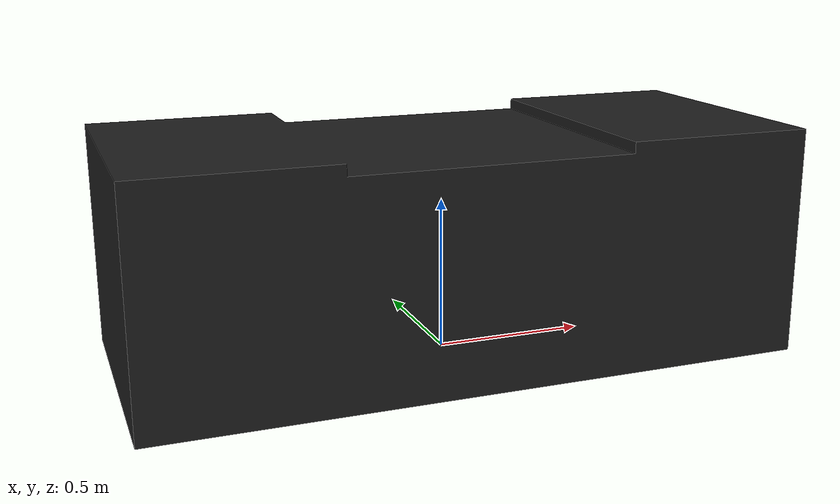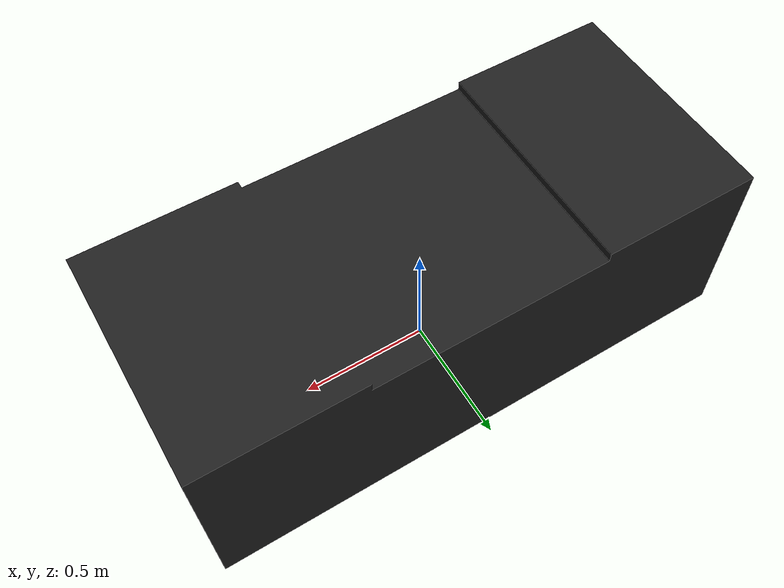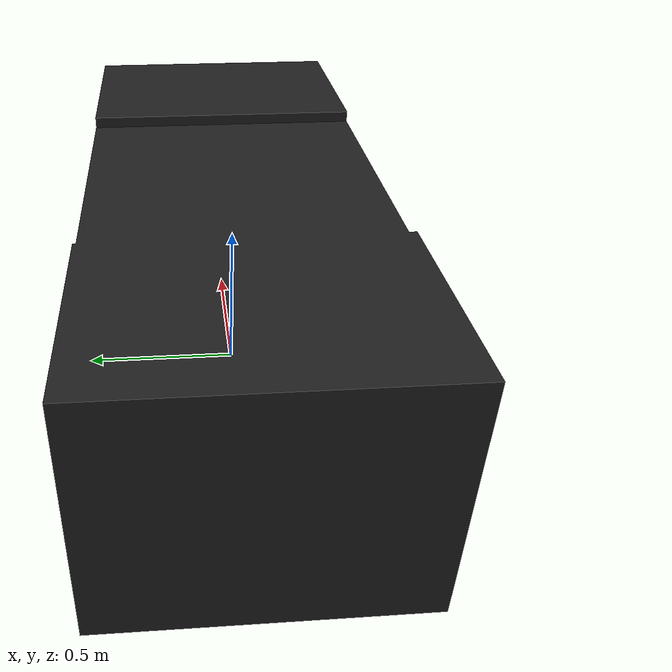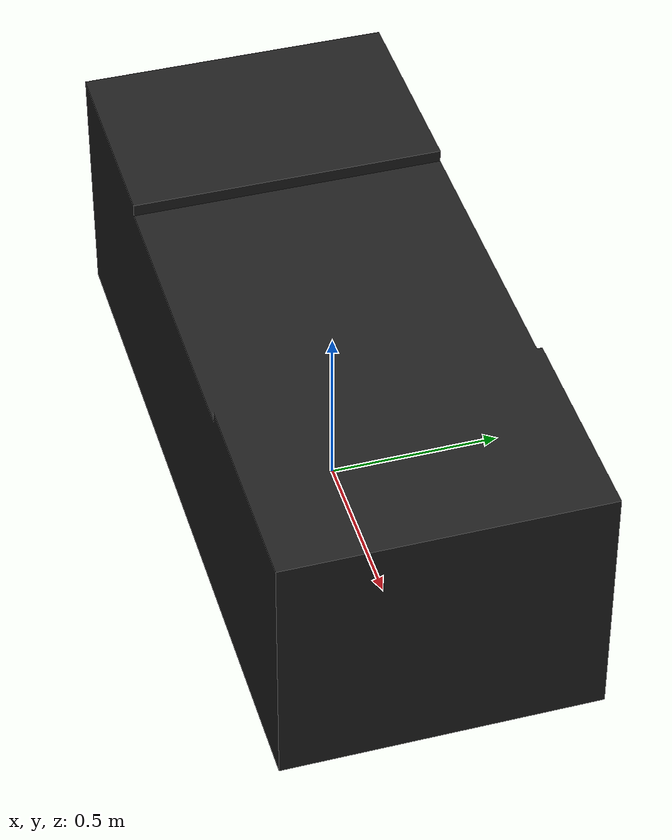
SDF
<?xml version="1.0" ?>
<sdf version="1.5">
  <model name="workstation">
    <static>true</static>
    <link name="link">
      <collision name="collision">
        <geometry>
          <mesh>
            <uri>model://workstation/meshes/workstation.obj</uri>
            <scale>1 1 1</scale>
          </mesh>
        </geometry>
        <surface>
          <friction>
            <ode>
              <mu>100</mu>
              <mu2>50</mu2>
            </ode>
          </friction>
        </surface>
      </collision>
      <visual name="visual">
        <geometry>
          <mesh>
            <uri>model://workstation/meshes/workstation.obj</uri>
            <scale>1 1 1</scale>
          </mesh>
        </geometry>
        <material>
          <script>
            <uri>file://media/materials/scripts/gazebo.material</uri>
            <name>Gazebo/Black</name>
          </script>
        </material>
      </visual>
    </link>
  </model>
</sdf>
